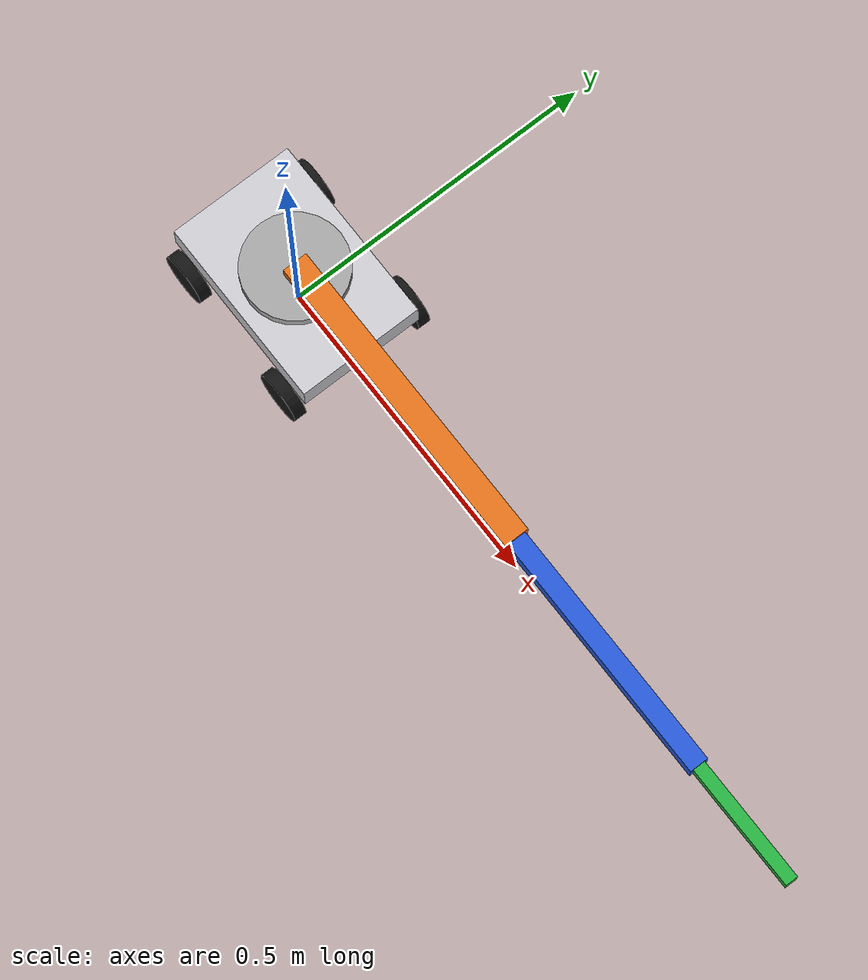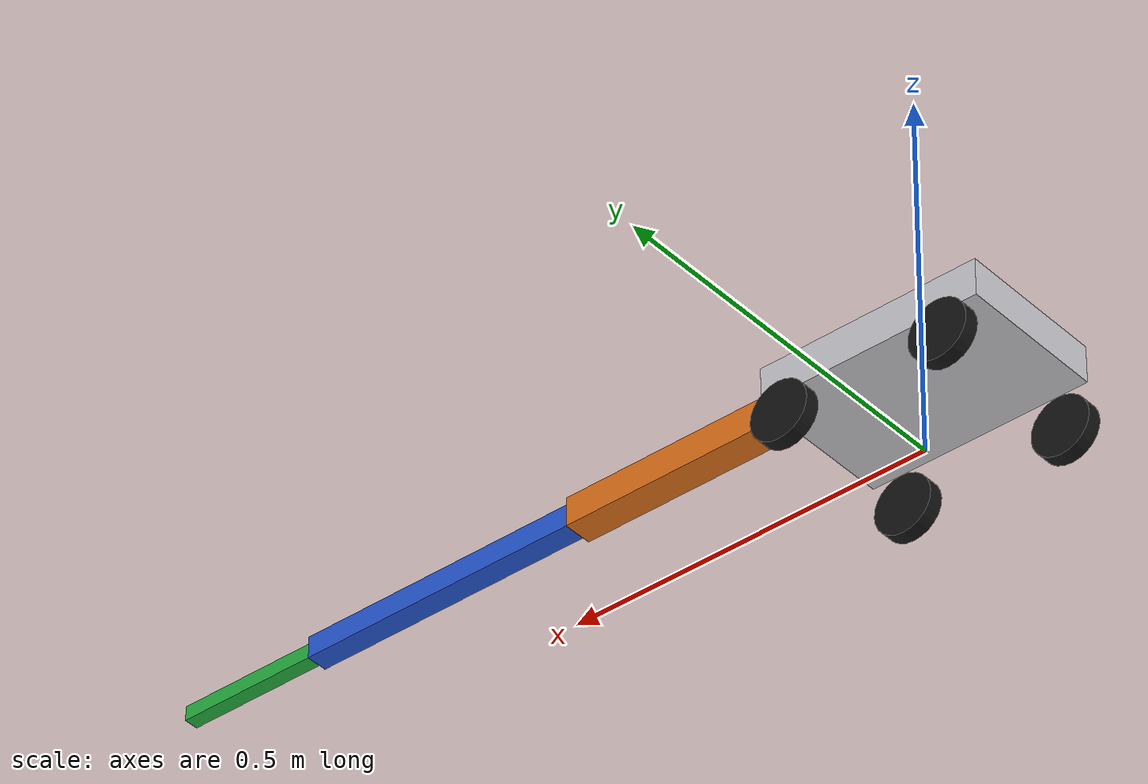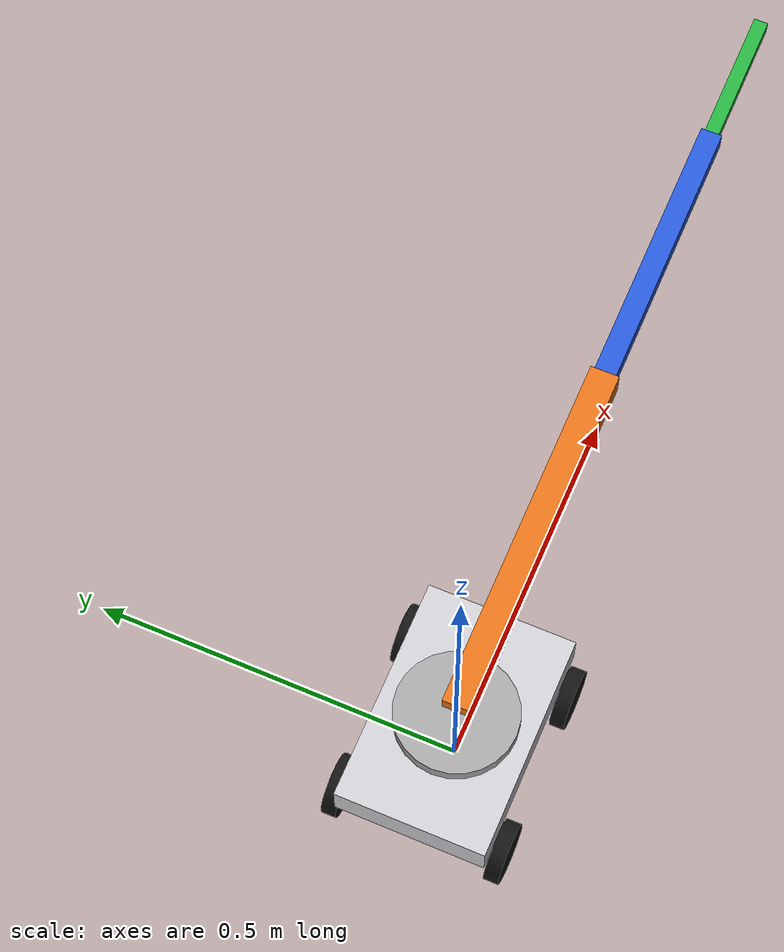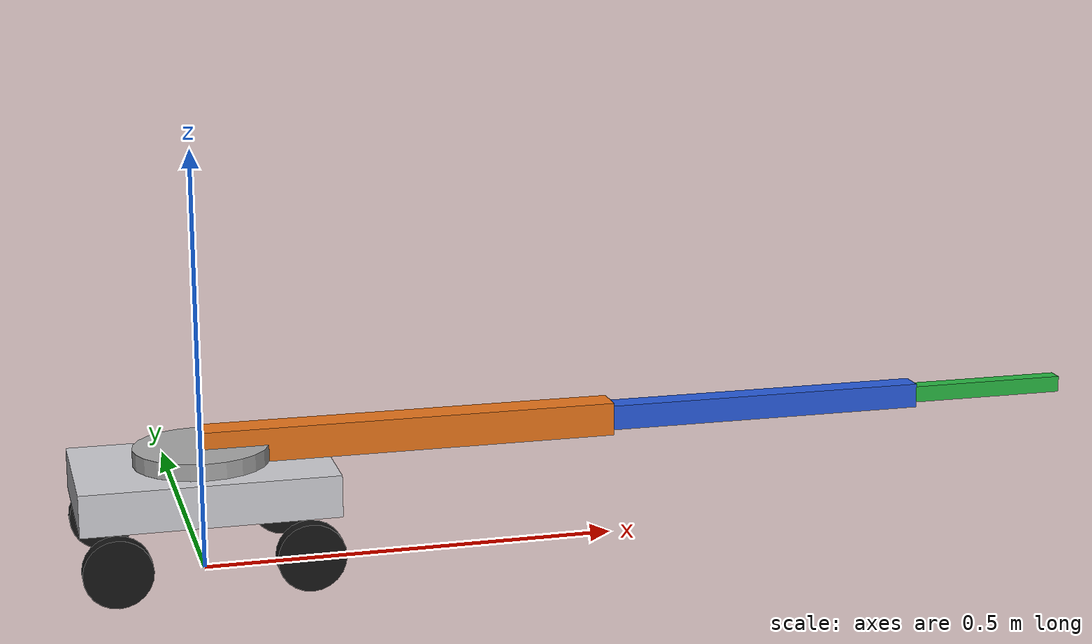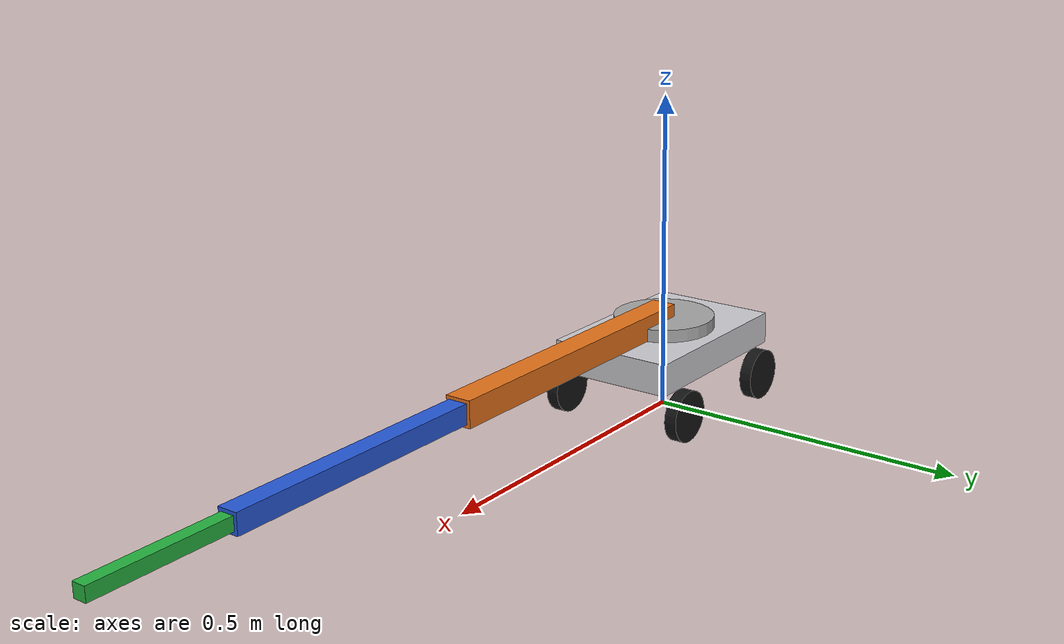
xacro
<?xml version="1.0"?>
<robot name="combined_mobile_manipulator" xmlns:xacro="http://www.ros.org/wiki/xacro">
  <xacro:include filename="components/mobile_base_macros.xacro"/>
  <xacro:include filename="components/arm_macros.xacro"/>

  <xacro:property name="base_length" value="0.3"/>
  <xacro:property name="base_width" value="0.2"/>
  <xacro:property name="base_height" value="0.05"/>
  <xacro:property name="wheel_radius" value="0.04"/>
  <xacro:property name="wheel_length" value="0.02"/>

  <xacro:property name="arm_base_radius" value="0.08"/>
  <xacro:property name="arm_base_length" value="0.02"/>
  <xacro:property name="link1_length" value="0.5"/>
  <xacro:property name="link1_width" value="0.04"/>
  <xacro:property name="link2_length" value="0.4"/>
  <xacro:property name="link2_width" value="0.03"/>
  <xacro:property name="link3_length" value="0.2"/>
  <xacro:property name="link3_width" value="0.02"/>

  <link name="world"/>

  <xacro:four_wheel_base
    prefix="mobile_"
    parent="world"
    base_xyz="0 0 ${base_height / 2.0 + 2.0 * wheel_radius}"
    base_length="${base_length}"
    base_width="${base_width}"
    base_height="${base_height}"
    wheel_radius="${wheel_radius}"
    wheel_length="${wheel_length}"/>

  <xacro:planar_arm_3r
    prefix="arm_"
    parent="mobile_base_link"
    base_xyz="0 0 ${base_height / 2.0 + arm_base_length / 2.0}"
    base_radius="${arm_base_radius}"
    base_length="${arm_base_length}"
    link1_length="${link1_length}"
    link1_width="${link1_width}"
    link2_length="${link2_length}"
    link2_width="${link2_width}"
    link3_length="${link3_length}"
    link3_width="${link3_width}"/>
</robot>

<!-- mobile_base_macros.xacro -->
<robot xmlns:xacro="http://www.ros.org/wiki/xacro">
  <material name="silver">
    <color rgba="0.80 0.80 0.82 1.0"/>
  </material>
  <material name="black">
    <color rgba="0.08 0.08 0.08 1.0"/>
  </material>

  <xacro:macro name="chassis_link" params="name length width height material:=silver">
    <link name="${name}">
      <visual>
        <geometry>
          <box size="${length} ${width} ${height}"/>
        </geometry>
        <material name="${material}"/>
      </visual>
      <collision>
        <geometry>
          <box size="${length} ${width} ${height}"/>
        </geometry>
      </collision>
    </link>
  </xacro:macro>

  <xacro:macro name="wheel_link" params="name radius length material:=black">
    <link name="${name}">
      <visual>
        <origin xyz="0 0 0" rpy="1.57079632679 0 0"/>
        <geometry>
          <cylinder radius="${radius}" length="${length}"/>
        </geometry>
        <material name="${material}"/>
      </visual>
      <collision>
        <origin xyz="0 0 0" rpy="1.57079632679 0 0"/>
        <geometry>
          <cylinder radius="${radius}" length="${length}"/>
        </geometry>
      </collision>
    </link>
  </xacro:macro>

  <xacro:macro name="wheel_joint" params="name parent child xyz">
    <joint name="${name}" type="continuous">
      <parent link="${parent}"/>
      <child link="${child}"/>
      <origin xyz="${xyz}" rpy="0 0 0"/>
      <axis xyz="0 1 0"/>
    </joint>
  </xacro:macro>

  <xacro:macro
    name="four_wheel_base"
    params="prefix parent base_xyz base_length base_width base_height wheel_radius wheel_length">
    <xacro:chassis_link
      name="${prefix}base_link"
      length="${base_length}"
      width="${base_width}"
      height="${base_height}"/>

    <joint name="${prefix}world_to_base" type="fixed">
      <parent link="${parent}"/>
      <child link="${prefix}base_link"/>
      <origin xyz="${base_xyz}" rpy="0 0 0"/>
    </joint>

    <xacro:property name="wheel_x" value="${base_length / 2.0 - wheel_radius}"/>
    <xacro:property name="wheel_y" value="${base_width / 2.0 + wheel_length / 2.0}"/>
    <xacro:property name="wheel_z" value="${-(base_height / 2.0 + wheel_radius)}"/>

    <xacro:wheel_link name="${prefix}front_left_wheel" radius="${wheel_radius}" length="${wheel_length}"/>
    <xacro:wheel_link name="${prefix}front_right_wheel" radius="${wheel_radius}" length="${wheel_length}"/>
    <xacro:wheel_link name="${prefix}rear_left_wheel" radius="${wheel_radius}" length="${wheel_length}"/>
    <xacro:wheel_link name="${prefix}rear_right_wheel" radius="${wheel_radius}" length="${wheel_length}"/>

    <xacro:wheel_joint
      name="${prefix}front_left_wheel_joint"
      parent="${prefix}base_link"
      child="${prefix}front_left_wheel"
      xyz="${wheel_x} ${wheel_y} ${wheel_z}"/>
    <xacro:wheel_joint
      name="${prefix}front_right_wheel_joint"
      parent="${prefix}base_link"
      child="${prefix}front_right_wheel"
      xyz="${wheel_x} ${-wheel_y} ${wheel_z}"/>
    <xacro:wheel_joint
      name="${prefix}rear_left_wheel_joint"
      parent="${prefix}base_link"
      child="${prefix}rear_left_wheel"
      xyz="${-wheel_x} ${wheel_y} ${wheel_z}"/>
    <xacro:wheel_joint
      name="${prefix}rear_right_wheel_joint"
      parent="${prefix}base_link"
      child="${prefix}rear_right_wheel"
      xyz="${-wheel_x} ${-wheel_y} ${wheel_z}"/>
  </xacro:macro>
</robot>

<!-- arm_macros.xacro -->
<robot xmlns:xacro="http://www.ros.org/wiki/xacro">
  <material name="gray">
    <color rgba="0.65 0.65 0.65 1.0"/>
  </material>
  <material name="orange">
    <color rgba="0.90 0.45 0.10 1.0"/>
  </material>
  <material name="blue">
    <color rgba="0.15 0.35 0.85 1.0"/>
  </material>
  <material name="green">
    <color rgba="0.15 0.70 0.25 1.0"/>
  </material>

  <xacro:macro name="arm_base_link" params="name radius length material:=gray">
    <link name="${name}">
      <visual>
        <geometry>
          <cylinder radius="${radius}" length="${length}"/>
        </geometry>
        <material name="${material}"/>
      </visual>
      <collision>
        <geometry>
          <cylinder radius="${radius}" length="${length}"/>
        </geometry>
      </collision>
    </link>
  </xacro:macro>

  <xacro:macro name="arm_box_link" params="name length width material:=orange">
    <link name="${name}">
      <visual>
        <origin xyz="${length / 2.0} 0 0" rpy="0 0 0"/>
        <geometry>
          <box size="${length} ${width} ${width}"/>
        </geometry>
        <material name="${material}"/>
      </visual>
      <collision>
        <origin xyz="${length / 2.0} 0 0" rpy="0 0 0"/>
        <geometry>
          <box size="${length} ${width} ${width}"/>
        </geometry>
      </collision>
    </link>
  </xacro:macro>

  <xacro:macro name="revolute_z_joint" params="name parent child xyz limit_lower:=-3.14159 limit_upper:=3.14159">
    <joint name="${name}" type="revolute">
      <parent link="${parent}"/>
      <child link="${child}"/>
      <origin xyz="${xyz}" rpy="0 0 0"/>
      <axis xyz="0 0 1"/>
      <limit lower="${limit_lower}" upper="${limit_upper}" effort="10.0" velocity="2.0"/>
    </joint>
  </xacro:macro>

  <xacro:macro
    name="planar_arm_2r"
    params="prefix parent base_xyz base_radius base_length link1_length link1_width link2_length link2_width">
    <xacro:arm_base_link
      name="${prefix}base_link"
      radius="${base_radius}"
      length="${base_length}"
      material="gray"/>

    <joint name="${prefix}world_to_base" type="fixed">
      <parent link="${parent}"/>
      <child link="${prefix}base_link"/>
      <origin xyz="${base_xyz}" rpy="0 0 0"/>
    </joint>

    <xacro:arm_box_link
      name="${prefix}link_1"
      length="${link1_length}"
      width="${link1_width}"
      material="orange"/>
    <xacro:revolute_z_joint
      name="${prefix}joint_1"
      parent="${prefix}base_link"
      child="${prefix}link_1"
      xyz="0 0 ${base_length / 2.0}"/>

    <xacro:arm_box_link
      name="${prefix}link_2"
      length="${link2_length}"
      width="${link2_width}"
      material="blue"/>
    <xacro:revolute_z_joint
      name="${prefix}joint_2"
      parent="${prefix}link_1"
      child="${prefix}link_2"
      xyz="${link1_length} 0 0"/>
  </xacro:macro>

  <xacro:macro
    name="planar_arm_3r"
    params="prefix parent base_xyz base_radius base_length link1_length link1_width link2_length link2_width link3_length link3_width">
    <xacro:arm_base_link
      name="${prefix}base_link"
      radius="${base_radius}"
      length="${base_length}"
      material="gray"/>

    <joint name="${prefix}world_to_base" type="fixed">
      <parent link="${parent}"/>
      <child link="${prefix}base_link"/>
      <origin xyz="${base_xyz}" rpy="0 0 0"/>
    </joint>

    <xacro:arm_box_link
      name="${prefix}link_1"
      length="${link1_length}"
      width="${link1_width}"
      material="orange"/>
    <xacro:revolute_z_joint
      name="${prefix}joint_1"
      parent="${prefix}base_link"
      child="${prefix}link_1"
      xyz="0 0 ${base_length / 2.0}"/>

    <xacro:arm_box_link
      name="${prefix}link_2"
      length="${link2_length}"
      width="${link2_width}"
      material="blue"/>
    <xacro:revolute_z_joint
      name="${prefix}joint_2"
      parent="${prefix}link_1"
      child="${prefix}link_2"
      xyz="${link1_length} 0 0"/>

    <xacro:arm_box_link
      name="${prefix}link_3"
      length="${link3_length}"
      width="${link3_width}"
      material="green"/>
    <xacro:revolute_z_joint
      name="${prefix}joint_3"
      parent="${prefix}link_2"
      child="${prefix}link_3"
      xyz="${link2_length} 0 0"/>
  </xacro:macro>
</robot>
